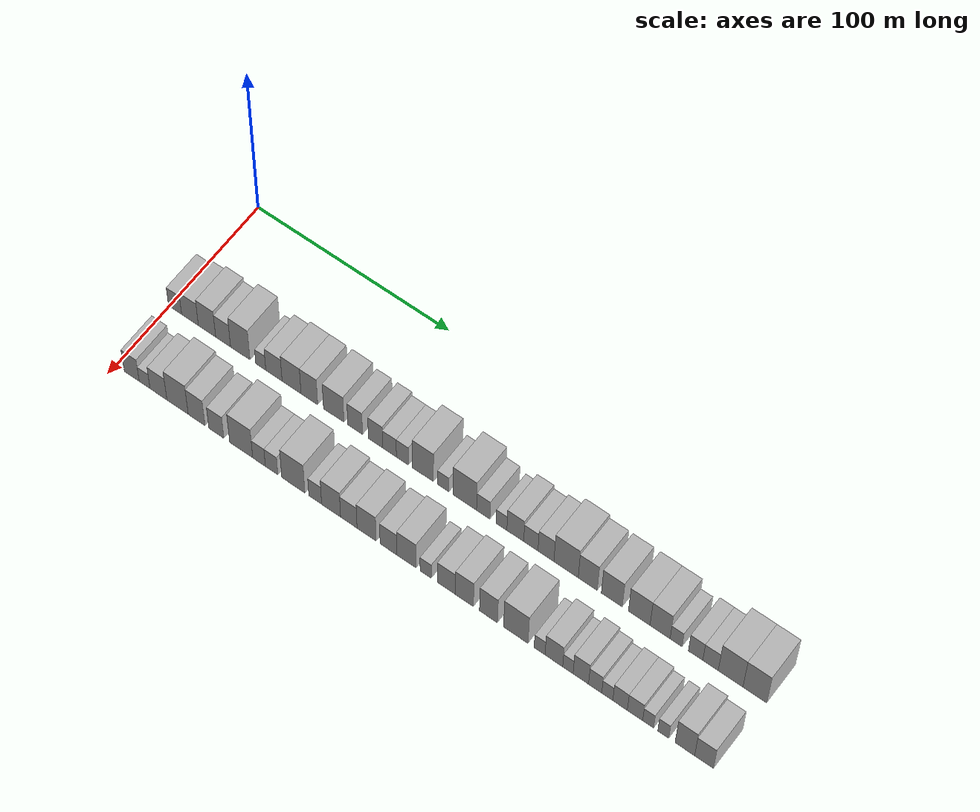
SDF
<sdf version="1.6">
 <world name="default">
  <model name="building_33">
   <static>1</static>
   <pose>50.0000 3.1521 0 0.000000 0.000000 0.000000</pose>
   <link name="link">
    <pose>0 0 7.50 0 0 0</pose>
    <collision name="collision"><geometry><box><size>20.0000 6.9400 15.0000</size></box></geometry></collision>
    <visual name="visual">
     <cast_shadows>0</cast_shadows>
     <geometry><box><size>20.0000 6.9400 15.0000</size></box></geometry>
     <material>
      <script>
       <uri>model://HANNAS_wall/materials/scripts</uri>
       <uri>model://HANNAS_wall/materials/textures</uri>
       <name>vrc/HANNAS_wall</name>
      </script>
     </material>
    </visual>
   </link>
  </model>
  <model name="building_34">
   <static>1</static>
   <pose>50.0000 11.0460 0 0.000000 0.000000 0.000000</pose>
   <link name="link">
    <pose>0 0 9.00 0 0 0</pose>
    <collision name="collision"><geometry><box><size>20.0000 8.8478 18.0000</size></box></geometry></collision>
    <visual name="visual">
     <cast_shadows>0</cast_shadows>
     <geometry><box><size>20.0000 8.8478 18.0000</size></box></geometry>
     <material>
      <script>
       <uri>model://HANNAS_wall/materials/scripts</uri>
       <uri>model://HANNAS_wall/materials/textures</uri>
       <name>vrc/HANNAS_wall</name>
      </script>
     </material>
    </visual>
   </link>
  </model>
  <model name="building_35">
   <static>1</static>
   <pose>50.0000 20.0284 0 0.000000 0.000000 0.000000</pose>
   <link name="link">
    <pose>0 0 10.50 0 0 0</pose>
    <collision name="collision"><geometry><box><size>20.0000 9.1170 21.0000</size></box></geometry></collision>
    <visual name="visual">
     <cast_shadows>0</cast_shadows>
     <geometry><box><size>20.0000 9.1170 21.0000</size></box></geometry>
     <material>
      <script>
       <uri>model://HANNAS_wall/materials/scripts</uri>
       <uri>model://HANNAS_wall/materials/textures</uri>
       <name>vrc/HANNAS_wall</name>
      </script>
     </material>
    </visual>
   </link>
  </model>
  <model name="building_36">
   <static>1</static>
   <pose>50.0000 28.4956 0 0.000000 0.000000 0.000000</pose>
   <link name="link">
    <pose>0 0 9.00 0 0 0</pose>
    <collision name="collision"><geometry><box><size>20.0000 7.8173 18.0000</size></box></geometry></collision>
    <visual name="visual">
     <cast_shadows>0</cast_shadows>
     <geometry><box><size>20.0000 7.8173 18.0000</size></box></geometry>
     <material>
      <script>
       <uri>model://HANNAS_wall/materials/scripts</uri>
       <uri>model://HANNAS_wall/materials/textures</uri>
       <name>vrc/HANNAS_wall</name>
      </script>
     </material>
    </visual>
   </link>
  </model>
  <model name="building_37">
   <static>1</static>
   <pose>50.0000 37.4809 0 0.000000 0.000000 0.000000</pose>
   <link name="link">
    <pose>0 0 12.00 0 0 0</pose>
    <collision name="collision"><geometry><box><size>20.0000 10.1533 24.0000</size></box></geometry></collision>
    <visual name="visual">
     <cast_shadows>0</cast_shadows>
     <geometry><box><size>20.0000 10.1533 24.0000</size></box></geometry>
     <material>
      <script>
       <uri>model://HANNAS_wall/materials/scripts</uri>
       <uri>model://HANNAS_wall/materials/textures</uri>
       <name>vrc/HANNAS_wall</name>
      </script>
     </material>
    </visual>
   </link>
  </model>
  <model name="building_38">
   <static>1</static>
   <pose>50.0000 48.1774 0 0.000000 0.000000 0.000000</pose>
   <link name="link">
    <pose>0 0 6.00 0 0 0</pose>
    <collision name="collision"><geometry><box><size>20.0000 5.2396 12.0000</size></box></geometry></collision>
    <visual name="visual">
     <cast_shadows>0</cast_shadows>
     <geometry><box><size>20.0000 5.2396 12.0000</size></box></geometry>
     <material>
      <script>
       <uri>model://HANNAS_wall/materials/scripts</uri>
       <uri>model://HANNAS_wall/materials/textures</uri>
       <name>vrc/HANNAS_wall</name>
      </script>
     </material>
    </visual>
   </link>
  </model>
  <model name="building_39">
   <static>1</static>
   <pose>50.0000 55.0235 0 0.000000 0.000000 0.000000</pose>
   <link name="link">
    <pose>0 0 9.00 0 0 0</pose>
    <collision name="collision"><geometry><box><size>20.0000 8.4526 18.0000</size></box></geometry></collision>
    <visual name="visual">
     <cast_shadows>0</cast_shadows>
     <geometry><box><size>20.0000 8.4526 18.0000</size></box></geometry>
     <material>
      <script>
       <uri>model://HANNAS_wall/materials/scripts</uri>
       <uri>model://HANNAS_wall/materials/textures</uri>
       <name>vrc/HANNAS_wall</name>
      </script>
     </material>
    </visual>
   </link>
  </model>
  <model name="building_40">
   <static>1</static>
   <pose>50.0000 64.1418 0 0.000000 0.000000 0.000000</pose>
   <link name="link">
    <pose>0 0 10.50 0 0 0</pose>
    <collision name="collision"><geometry><box><size>20.0000 9.7840 21.0000</size></box></geometry></collision>
    <visual name="visual">
     <cast_shadows>0</cast_shadows>
     <geometry><box><size>20.0000 9.7840 21.0000</size></box></geometry>
     <material>
      <script>
       <uri>model://HANNAS_wall/materials/scripts</uri>
       <uri>model://HANNAS_wall/materials/textures</uri>
       <name>vrc/HANNAS_wall</name>
      </script>
     </material>
    </visual>
   </link>
  </model>
  <model name="building_41">
   <static>1</static>
   <pose>50.0000 73.3404 0 0.000000 0.000000 0.000000</pose>
   <link name="link">
    <pose>0 0 10.50 0 0 0</pose>
    <collision name="collision"><geometry><box><size>20.0000 8.6131 21.0000</size></box></geometry></collision>
    <visual name="visual">
     <cast_shadows>0</cast_shadows>
     <geometry><box><size>20.0000 8.6131 21.0000</size></box></geometry>
     <material>
      <script>
       <uri>model://HANNAS_wall/materials/scripts</uri>
       <uri>model://HANNAS_wall/materials/textures</uri>
       <name>vrc/HANNAS_wall</name>
      </script>
     </material>
    </visual>
   </link>
  </model>
  <model name="building_42">
   <static>1</static>
   <pose>50.0000 85.8703 0 0.000000 0.000000 0.000000</pose>
   <link name="link">
    <pose>0 0 10.50 0 0 0</pose>
    <collision name="collision"><geometry><box><size>20.0000 10.4467 21.0000</size></box></geometry></collision>
    <visual name="visual">
     <cast_shadows>0</cast_shadows>
     <geometry><box><size>20.0000 10.4467 21.0000</size></box></geometry>
     <material>
      <script>
       <uri>model://HANNAS_wall/materials/scripts</uri>
       <uri>model://HANNAS_wall/materials/textures</uri>
       <name>vrc/HANNAS_wall</name>
      </script>
     </material>
    </visual>
   </link>
  </model>
  <model name="building_43">
   <static>1</static>
   <pose>50.0000 96.8396 0 0.000000 0.000000 0.000000</pose>
   <link name="link">
    <pose>0 0 9.00 0 0 0</pose>
    <collision name="collision"><geometry><box><size>20.0000 7.4919 18.0000</size></box></geometry></collision>
    <visual name="visual">
     <cast_shadows>0</cast_shadows>
     <geometry><box><size>20.0000 7.4919 18.0000</size></box></geometry>
     <material>
      <script>
       <uri>model://HANNAS_wall/materials/scripts</uri>
       <uri>model://HANNAS_wall/materials/textures</uri>
       <name>vrc/HANNAS_wall</name>
      </script>
     </material>
    </visual>
   </link>
  </model>
  <model name="building_44">
   <static>1</static>
   <pose>50.0000 107.2097 0 0.000000 0.000000 0.000000</pose>
   <link name="link">
    <pose>0 0 9.00 0 0 0</pose>
    <collision name="collision"><geometry><box><size>20.0000 7.2483 18.0000</size></box></geometry></collision>
    <visual name="visual">
     <cast_shadows>0</cast_shadows>
     <geometry><box><size>20.0000 7.2483 18.0000</size></box></geometry>
     <material>
      <script>
       <uri>model://HANNAS_wall/materials/scripts</uri>
       <uri>model://HANNAS_wall/materials/textures</uri>
       <name>vrc/HANNAS_wall</name>
      </script>
     </material>
    </visual>
   </link>
  </model>
  <model name="building_45">
   <static>1</static>
   <pose>50.0000 114.3079 0 0.000000 0.000000 0.000000</pose>
   <link name="link">
    <pose>0 0 7.50 0 0 0</pose>
    <collision name="collision"><geometry><box><size>20.0000 6.9482 15.0000</size></box></geometry></collision>
    <visual name="visual">
     <cast_shadows>0</cast_shadows>
     <geometry><box><size>20.0000 6.9482 15.0000</size></box></geometry>
     <material>
      <script>
       <uri>model://HANNAS_wall/materials/scripts</uri>
       <uri>model://HANNAS_wall/materials/textures</uri>
       <name>vrc/HANNAS_wall</name>
      </script>
     </material>
    </visual>
   </link>
  </model>
  <model name="building_46">
   <static>1</static>
   <pose>50.0000 120.8372 0 0.000000 0.000000 0.000000</pose>
   <link name="link">
    <pose>0 0 7.50 0 0 0</pose>
    <collision name="collision"><geometry><box><size>20.0000 6.1103 15.0000</size></box></geometry></collision>
    <visual name="visual">
     <cast_shadows>0</cast_shadows>
     <geometry><box><size>20.0000 6.1103 15.0000</size></box></geometry>
     <material>
      <script>
       <uri>model://HANNAS_wall/materials/scripts</uri>
       <uri>model://HANNAS_wall/materials/textures</uri>
       <name>vrc/HANNAS_wall</name>
      </script>
     </material>
    </visual>
   </link>
  </model>
  <model name="building_47">
   <static>1</static>
   <pose>50.0000 131.1710 0 0.000000 0.000000 0.000000</pose>
   <link name="link">
    <pose>0 0 12.00 0 0 0</pose>
    <collision name="collision"><geometry><box><size>20.0000 10.5573 24.0000</size></box></geometry></collision>
    <visual name="visual">
     <cast_shadows>0</cast_shadows>
     <geometry><box><size>20.0000 10.5573 24.0000</size></box></geometry>
     <material>
      <script>
       <uri>model://HANNAS_wall/materials/scripts</uri>
       <uri>model://HANNAS_wall/materials/textures</uri>
       <name>vrc/HANNAS_wall</name>
      </script>
     </material>
    </visual>
   </link>
  </model>
  <model name="building_48">
   <static>1</static>
   <pose>50.0000 141.3286 0 0.000000 0.000000 0.000000</pose>
   <link name="link">
    <pose>0 0 6.00 0 0 0</pose>
    <collision name="collision"><geometry><box><size>20.0000 5.7578 12.0000</size></box></geometry></collision>
    <visual name="visual">
     <cast_shadows>0</cast_shadows>
     <geometry><box><size>20.0000 5.7578 12.0000</size></box></geometry>
     <material>
      <script>
       <uri>model://HANNAS_wall/materials/scripts</uri>
       <uri>model://HANNAS_wall/materials/textures</uri>
       <name>vrc/HANNAS_wall</name>
      </script>
     </material>
    </visual>
   </link>
  </model>
  <model name="building_49">
   <static>1</static>
   <pose>50.0000 152.1058 0 0.000000 0.000000 0.000000</pose>
   <link name="link">
    <pose>0 0 12.00 0 0 0</pose>
    <collision name="collision"><geometry><box><size>20.0000 11.7966 24.0000</size></box></geometry></collision>
    <visual name="visual">
     <cast_shadows>0</cast_shadows>
     <geometry><box><size>20.0000 11.7966 24.0000</size></box></geometry>
     <material>
      <script>
       <uri>model://HANNAS_wall/materials/scripts</uri>
       <uri>model://HANNAS_wall/materials/textures</uri>
       <name>vrc/HANNAS_wall</name>
      </script>
     </material>
    </visual>
   </link>
  </model>
  <model name="building_50">
   <static>1</static>
   <pose>50.0000 161.3283 0 0.000000 0.000000 0.000000</pose>
   <link name="link">
    <pose>0 0 7.50 0 0 0</pose>
    <collision name="collision"><geometry><box><size>20.0000 6.6484 15.0000</size></box></geometry></collision>
    <visual name="visual">
     <cast_shadows>0</cast_shadows>
     <geometry><box><size>20.0000 6.6484 15.0000</size></box></geometry>
     <material>
      <script>
       <uri>model://HANNAS_wall/materials/scripts</uri>
       <uri>model://HANNAS_wall/materials/textures</uri>
       <name>vrc/HANNAS_wall</name>
      </script>
     </material>
    </visual>
   </link>
  </model>
  <model name="building_51">
   <static>1</static>
   <pose>50.0000 170.3522 0 0.000000 0.000000 0.000000</pose>
   <link name="link">
    <pose>0 0 6.00 0 0 0</pose>
    <collision name="collision"><geometry><box><size>20.0000 5.3995 12.0000</size></box></geometry></collision>
    <visual name="visual">
     <cast_shadows>0</cast_shadows>
     <geometry><box><size>20.0000 5.3995 12.0000</size></box></geometry>
     <material>
      <script>
       <uri>model://HANNAS_wall/materials/scripts</uri>
       <uri>model://HANNAS_wall/materials/textures</uri>
       <name>vrc/HANNAS_wall</name>
      </script>
     </material>
    </visual>
   </link>
  </model>
  <model name="building_52">
   <static>1</static>
   <pose>50.0000 177.2040 0 0.000000 0.000000 0.000000</pose>
   <link name="link">
    <pose>0 0 9.00 0 0 0</pose>
    <collision name="collision"><geometry><box><size>20.0000 8.3040 18.0000</size></box></geometry></collision>
    <visual name="visual">
     <cast_shadows>0</cast_shadows>
     <geometry><box><size>20.0000 8.3040 18.0000</size></box></geometry>
     <material>
      <script>
       <uri>model://HANNAS_wall/materials/scripts</uri>
       <uri>model://HANNAS_wall/materials/textures</uri>
       <name>vrc/HANNAS_wall</name>
      </script>
     </material>
    </visual>
   </link>
  </model>
  <model name="building_53">
   <static>1</static>
   <pose>50.0000 184.8605 0 0.000000 0.000000 0.000000</pose>
   <link name="link">
    <pose>0 0 7.50 0 0 0</pose>
    <collision name="collision"><geometry><box><size>20.0000 7.0092 15.0000</size></box></geometry></collision>
    <visual name="visual">
     <cast_shadows>0</cast_shadows>
     <geometry><box><size>20.0000 7.0092 15.0000</size></box></geometry>
     <material>
      <script>
       <uri>model://HANNAS_wall/materials/scripts</uri>
       <uri>model://HANNAS_wall/materials/textures</uri>
       <name>vrc/HANNAS_wall</name>
      </script>
     </material>
    </visual>
   </link>
  </model>
  <model name="building_54">
   <static>1</static>
   <pose>50.0000 192.2796 0 0.000000 0.000000 0.000000</pose>
   <link name="link">
    <pose>0 0 9.00 0 0 0</pose>
    <collision name="collision"><geometry><box><size>20.0000 7.8289 18.0000</size></box></geometry></collision>
    <visual name="visual">
     <cast_shadows>0</cast_shadows>
     <geometry><box><size>20.0000 7.8289 18.0000</size></box></geometry>
     <material>
      <script>
       <uri>model://HANNAS_wall/materials/scripts</uri>
       <uri>model://HANNAS_wall/materials/textures</uri>
       <name>vrc/HANNAS_wall</name>
      </script>
     </material>
    </visual>
   </link>
  </model>
  <model name="building_55">
   <static>1</static>
   <pose>50.0000 202.1434 0 0.000000 0.000000 0.000000</pose>
   <link name="link">
    <pose>0 0 12.00 0 0 0</pose>
    <collision name="collision"><geometry><box><size>20.0000 11.8985 24.0000</size></box></geometry></collision>
    <visual name="visual">
     <cast_shadows>0</cast_shadows>
     <geometry><box><size>20.0000 11.8985 24.0000</size></box></geometry>
     <material>
      <script>
       <uri>model://HANNAS_wall/materials/scripts</uri>
       <uri>model://HANNAS_wall/materials/textures</uri>
       <name>vrc/HANNAS_wall</name>
      </script>
     </material>
    </visual>
   </link>
  </model>
  <model name="building_56">
   <static>1</static>
   <pose>50.0000 212.7062 0 0.000000 0.000000 0.000000</pose>
   <link name="link">
    <pose>0 0 10.50 0 0 0</pose>
    <collision name="collision"><geometry><box><size>20.0000 9.2271 21.0000</size></box></geometry></collision>
    <visual name="visual">
     <cast_shadows>0</cast_shadows>
     <geometry><box><size>20.0000 9.2271 21.0000</size></box></geometry>
     <material>
      <script>
       <uri>model://HANNAS_wall/materials/scripts</uri>
       <uri>model://HANNAS_wall/materials/textures</uri>
       <name>vrc/HANNAS_wall</name>
      </script>
     </material>
    </visual>
   </link>
  </model>
  <model name="building_57">
   <static>1</static>
   <pose>50.0000 224.3722 0 0.000000 0.000000 0.000000</pose>
   <link name="link">
    <pose>0 0 10.50 0 0 0</pose>
    <collision name="collision"><geometry><box><size>20.0000 10.1051 21.0000</size></box></geometry></collision>
    <visual name="visual">
     <cast_shadows>0</cast_shadows>
     <geometry><box><size>20.0000 10.1051 21.0000</size></box></geometry>
     <material>
      <script>
       <uri>model://HANNAS_wall/materials/scripts</uri>
       <uri>model://HANNAS_wall/materials/textures</uri>
       <name>vrc/HANNAS_wall</name>
      </script>
     </material>
    </visual>
   </link>
  </model>
  <model name="building_58">
   <static>1</static>
   <pose>50.0000 237.6212 0 0.000000 0.000000 0.000000</pose>
   <link name="link">
    <pose>0 0 10.50 0 0 0</pose>
    <collision name="collision"><geometry><box><size>20.0000 10.3929 21.0000</size></box></geometry></collision>
    <visual name="visual">
     <cast_shadows>0</cast_shadows>
     <geometry><box><size>20.0000 10.3929 21.0000</size></box></geometry>
     <material>
      <script>
       <uri>model://HANNAS_wall/materials/scripts</uri>
       <uri>model://HANNAS_wall/materials/textures</uri>
       <name>vrc/HANNAS_wall</name>
      </script>
     </material>
    </visual>
   </link>
  </model>
  <model name="building_59">
   <static>1</static>
   <pose>50.0000 247.6309 0 0.000000 0.000000 0.000000</pose>
   <link name="link">
    <pose>0 0 10.50 0 0 0</pose>
    <collision name="collision"><geometry><box><size>20.0000 9.6265 21.0000</size></box></geometry></collision>
    <visual name="visual">
     <cast_shadows>0</cast_shadows>
     <geometry><box><size>20.0000 9.6265 21.0000</size></box></geometry>
     <material>
      <script>
       <uri>model://HANNAS_wall/materials/scripts</uri>
       <uri>model://HANNAS_wall/materials/textures</uri>
       <name>vrc/HANNAS_wall</name>
      </script>
     </material>
    </visual>
   </link>
  </model>
  <model name="building_60">
   <static>1</static>
   <pose>50.0000 255.3122 0 0.000000 0.000000 0.000000</pose>
   <link name="link">
    <pose>0 0 6.00 0 0 0</pose>
    <collision name="collision"><geometry><box><size>20.0000 5.7360 12.0000</size></box></geometry></collision>
    <visual name="visual">
     <cast_shadows>0</cast_shadows>
     <geometry><box><size>20.0000 5.7360 12.0000</size></box></geometry>
     <material>
      <script>
       <uri>model://HANNAS_wall/materials/scripts</uri>
       <uri>model://HANNAS_wall/materials/textures</uri>
       <name>vrc/HANNAS_wall</name>
      </script>
     </material>
    </visual>
   </link>
  </model>
  <model name="building_61">
   <static>1</static>
   <pose>50.0000 264.6094 0 0.000000 0.000000 0.000000</pose>
   <link name="link">
    <pose>0 0 7.50 0 0 0</pose>
    <collision name="collision"><geometry><box><size>20.0000 6.8584 15.0000</size></box></geometry></collision>
    <visual name="visual">
     <cast_shadows>0</cast_shadows>
     <geometry><box><size>20.0000 6.8584 15.0000</size></box></geometry>
     <material>
      <script>
       <uri>model://HANNAS_wall/materials/scripts</uri>
       <uri>model://HANNAS_wall/materials/textures</uri>
       <name>vrc/HANNAS_wall</name>
      </script>
     </material>
    </visual>
   </link>
  </model>
  <model name="building_62">
   <static>1</static>
   <pose>50.0000 271.6974 0 0.000000 0.000000 0.000000</pose>
   <link name="link">
    <pose>0 0 7.50 0 0 0</pose>
    <collision name="collision"><geometry><box><size>20.0000 7.3177 15.0000</size></box></geometry></collision>
    <visual name="visual">
     <cast_shadows>0</cast_shadows>
     <geometry><box><size>20.0000 7.3177 15.0000</size></box></geometry>
     <material>
      <script>
       <uri>model://HANNAS_wall/materials/scripts</uri>
       <uri>model://HANNAS_wall/materials/textures</uri>
       <name>vrc/HANNAS_wall</name>
      </script>
     </material>
    </visual>
   </link>
  </model>
  <model name="building_63">
   <static>1</static>
   <pose>50.0000 281.1941 0 0.000000 0.000000 0.000000</pose>
   <link name="link">
    <pose>0 0 12.00 0 0 0</pose>
    <collision name="collision"><geometry><box><size>20.0000 11.6757 24.0000</size></box></geometry></collision>
    <visual name="visual">
     <cast_shadows>0</cast_shadows>
     <geometry><box><size>20.0000 11.6757 24.0000</size></box></geometry>
     <material>
      <script>
       <uri>model://HANNAS_wall/materials/scripts</uri>
       <uri>model://HANNAS_wall/materials/textures</uri>
       <name>vrc/HANNAS_wall</name>
      </script>
     </material>
    </visual>
   </link>
  </model>
  <model name="building_64">
   <static>1</static>
   <pose>50.0000 292.6309 0 0.000000 0.000000 0.000000</pose>
   <link name="link">
    <pose>0 0 12.00 0 0 0</pose>
    <collision name="collision"><geometry><box><size>20.0000 11.1978 24.0000</size></box></geometry></collision>
    <visual name="visual">
     <cast_shadows>0</cast_shadows>
     <geometry><box><size>20.0000 11.1978 24.0000</size></box></geometry>
     <material>
      <script>
       <uri>model://HANNAS_wall/materials/scripts</uri>
       <uri>model://HANNAS_wall/materials/textures</uri>
       <name>vrc/HANNAS_wall</name>
      </script>
     </material>
    </visual>
   </link>
  </model>
  <model name="building_98">
   <static>1</static>
   <pose>85.0000 8.4655 0 0.000000 0.000000 0.000000</pose>
   <link name="link">
    <pose>0 0 9.00 0 0 0</pose>
    <collision name="collision"><geometry><box><size>20.0000 7.8711 18.0000</size></box></geometry></collision>
    <visual name="visual">
     <cast_shadows>0</cast_shadows>
     <geometry><box><size>20.0000 7.8711 18.0000</size></box></geometry>
     <material>
      <script>
       <uri>model://HANNAS_wall/materials/scripts</uri>
       <uri>model://HANNAS_wall/materials/textures</uri>
       <name>vrc/HANNAS_wall</name>
      </script>
     </material>
    </visual>
   </link>
  </model>
  <model name="building_99">
   <static>1</static>
   <pose>85.0000 15.2433 0 0.000000 0.000000 0.000000</pose>
   <link name="link">
    <pose>0 0 6.00 0 0 0</pose>
    <collision name="collision"><geometry><box><size>20.0000 5.6845 12.0000</size></box></geometry></collision>
    <visual name="visual">
     <cast_shadows>0</cast_shadows>
     <geometry><box><size>20.0000 5.6845 12.0000</size></box></geometry>
     <material>
      <script>
       <uri>model://HANNAS_wall/materials/scripts</uri>
       <uri>model://HANNAS_wall/materials/textures</uri>
       <name>vrc/HANNAS_wall</name>
      </script>
     </material>
    </visual>
   </link>
  </model>
  <model name="building_100">
   <static>1</static>
   <pose>85.0000 22.5044 0 0.000000 0.000000 0.000000</pose>
   <link name="link">
    <pose>0 0 9.00 0 0 0</pose>
    <collision name="collision"><geometry><box><size>20.0000 8.8376 18.0000</size></box></geometry></collision>
    <visual name="visual">
     <cast_shadows>0</cast_shadows>
     <geometry><box><size>20.0000 8.8376 18.0000</size></box></geometry>
     <material>
      <script>
       <uri>model://HANNAS_wall/materials/scripts</uri>
       <uri>model://HANNAS_wall/materials/textures</uri>
       <name>vrc/HANNAS_wall</name>
      </script>
     </material>
    </visual>
   </link>
  </model>
  <model name="building_101">
   <static>1</static>
   <pose>85.0000 32.4868 0 0.000000 0.000000 0.000000</pose>
   <link name="link">
    <pose>0 0 12.00 0 0 0</pose>
    <collision name="collision"><geometry><box><size>20.0000 11.1273 24.0000</size></box></geometry></collision>
    <visual name="visual">
     <cast_shadows>0</cast_shadows>
     <geometry><box><size>20.0000 11.1273 24.0000</size></box></geometry>
     <material>
      <script>
       <uri>model://HANNAS_wall/materials/scripts</uri>
       <uri>model://HANNAS_wall/materials/textures</uri>
       <name>vrc/HANNAS_wall</name>
      </script>
     </material>
    </visual>
   </link>
  </model>
  <model name="building_102">
   <static>1</static>
   <pose>85.0000 42.4105 0 0.000000 0.000000 0.000000</pose>
   <link name="link">
    <pose>0 0 10.50 0 0 0</pose>
    <collision name="collision"><geometry><box><size>20.0000 8.7200 21.0000</size></box></geometry></collision>
    <visual name="visual">
     <cast_shadows>0</cast_shadows>
     <geometry><box><size>20.0000 8.7200 21.0000</size></box></geometry>
     <material>
      <script>
       <uri>model://HANNAS_wall/materials/scripts</uri>
       <uri>model://HANNAS_wall/materials/textures</uri>
       <name>vrc/HANNAS_wall</name>
      </script>
     </material>
    </visual>
   </link>
  </model>
  <model name="building_103">
   <static>1</static>
   <pose>85.0000 52.6593 0 0.000000 0.000000 0.000000</pose>
   <link name="link">
    <pose>0 0 9.00 0 0 0</pose>
    <collision name="collision"><geometry><box><size>20.0000 7.7776 18.0000</size></box></geometry></collision>
    <visual name="visual">
     <cast_shadows>0</cast_shadows>
     <geometry><box><size>20.0000 7.7776 18.0000</size></box></geometry>
     <material>
      <script>
       <uri>model://HANNAS_wall/materials/scripts</uri>
       <uri>model://HANNAS_wall/materials/textures</uri>
       <name>vrc/HANNAS_wall</name>
      </script>
     </material>
    </visual>
   </link>
  </model>
  <model name="building_104">
   <static>1</static>
   <pose>85.0000 65.4905 0 0.000000 0.000000 0.000000</pose>
   <link name="link">
    <pose>0 0 12.00 0 0 0</pose>
    <collision name="collision"><geometry><box><size>20.0000 11.8847 24.0000</size></box></geometry></collision>
    <visual name="visual">
     <cast_shadows>0</cast_shadows>
     <geometry><box><size>20.0000 11.8847 24.0000</size></box></geometry>
     <material>
      <script>
       <uri>model://HANNAS_wall/materials/scripts</uri>
       <uri>model://HANNAS_wall/materials/textures</uri>
       <name>vrc/HANNAS_wall</name>
      </script>
     </material>
    </visual>
   </link>
  </model>
  <model name="building_105">
   <static>1</static>
   <pose>85.0000 74.6698 0 0.000000 0.000000 0.000000</pose>
   <link name="link">
    <pose>0 0 7.50 0 0 0</pose>
    <collision name="collision"><geometry><box><size>20.0000 6.4739 15.0000</size></box></geometry></collision>
    <visual name="visual">
     <cast_shadows>0</cast_shadows>
     <geometry><box><size>20.0000 6.4739 15.0000</size></box></geometry>
     <material>
      <script>
       <uri>model://HANNAS_wall/materials/scripts</uri>
       <uri>model://HANNAS_wall/materials/textures</uri>
       <name>vrc/HANNAS_wall</name>
      </script>
     </material>
    </visual>
   </link>
  </model>
  <model name="building_106">
   <static>1</static>
   <pose>85.0000 81.0987 0 0.000000 0.000000 0.000000</pose>
   <link name="link">
    <pose>0 0 7.50 0 0 0</pose>
    <collision name="collision"><geometry><box><size>20.0000 6.3840 15.0000</size></box></geometry></collision>
    <visual name="visual">
     <cast_shadows>0</cast_shadows>
     <geometry><box><size>20.0000 6.3840 15.0000</size></box></geometry>
     <material>
      <script>
       <uri>model://HANNAS_wall/materials/scripts</uri>
       <uri>model://HANNAS_wall/materials/textures</uri>
       <name>vrc/HANNAS_wall</name>
      </script>
     </material>
    </visual>
   </link>
  </model>
  <model name="building_107">
   <static>1</static>
   <pose>85.0000 92.1705 0 0.000000 0.000000 0.000000</pose>
   <link name="link">
    <pose>0 0 12.00 0 0 0</pose>
    <collision name="collision"><geometry><box><size>20.0000 11.7596 24.0000</size></box></geometry></collision>
    <visual name="visual">
     <cast_shadows>0</cast_shadows>
     <geometry><box><size>20.0000 11.7596 24.0000</size></box></geometry>
     <material>
      <script>
       <uri>model://HANNAS_wall/materials/scripts</uri>
       <uri>model://HANNAS_wall/materials/textures</uri>
       <name>vrc/HANNAS_wall</name>
      </script>
     </material>
    </visual>
   </link>
  </model>
  <model name="building_108">
   <static>1</static>
   <pose>85.0000 103.2896 0 0.000000 0.000000 0.000000</pose>
   <link name="link">
    <pose>0 0 7.50 0 0 0</pose>
    <collision name="collision"><geometry><box><size>20.0000 6.4787 15.0000</size></box></geometry></collision>
    <visual name="visual">
     <cast_shadows>0</cast_shadows>
     <geometry><box><size>20.0000 6.4787 15.0000</size></box></geometry>
     <material>
      <script>
       <uri>model://HANNAS_wall/materials/scripts</uri>
       <uri>model://HANNAS_wall/materials/textures</uri>
       <name>vrc/HANNAS_wall</name>
      </script>
     </material>
    </visual>
   </link>
  </model>
  <model name="building_109">
   <static>1</static>
   <pose>85.0000 111.3227 0 0.000000 0.000000 0.000000</pose>
   <link name="link">
    <pose>0 0 10.50 0 0 0</pose>
    <collision name="collision"><geometry><box><size>20.0000 9.5874 21.0000</size></box></geometry></collision>
    <visual name="visual">
     <cast_shadows>0</cast_shadows>
     <geometry><box><size>20.0000 9.5874 21.0000</size></box></geometry>
     <material>
      <script>
       <uri>model://HANNAS_wall/materials/scripts</uri>
       <uri>model://HANNAS_wall/materials/textures</uri>
       <name>vrc/HANNAS_wall</name>
      </script>
     </material>
    </visual>
   </link>
  </model>
  <model name="building_110">
   <static>1</static>
   <pose>85.0000 120.2612 0 0.000000 0.000000 0.000000</pose>
   <link name="link">
    <pose>0 0 9.00 0 0 0</pose>
    <collision name="collision"><geometry><box><size>20.0000 8.2897 18.0000</size></box></geometry></collision>
    <visual name="visual">
     <cast_shadows>0</cast_shadows>
     <geometry><box><size>20.0000 8.2897 18.0000</size></box></geometry>
     <material>
      <script>
       <uri>model://HANNAS_wall/materials/scripts</uri>
       <uri>model://HANNAS_wall/materials/textures</uri>
       <name>vrc/HANNAS_wall</name>
      </script>
     </material>
    </visual>
   </link>
  </model>
  <model name="building_111">
   <static>1</static>
   <pose>85.0000 129.1804 0 0.000000 0.000000 0.000000</pose>
   <link name="link">
    <pose>0 0 10.50 0 0 0</pose>
    <collision name="collision"><geometry><box><size>20.0000 9.5487 21.0000</size></box></geometry></collision>
    <visual name="visual">
     <cast_shadows>0</cast_shadows>
     <geometry><box><size>20.0000 9.5487 21.0000</size></box></geometry>
     <material>
      <script>
       <uri>model://HANNAS_wall/materials/scripts</uri>
       <uri>model://HANNAS_wall/materials/textures</uri>
       <name>vrc/HANNAS_wall</name>
      </script>
     </material>
    </visual>
   </link>
  </model>
  <model name="building_112">
   <static>1</static>
   <pose>85.0000 140.1492 0 0.000000 0.000000 0.000000</pose>
   <link name="link">
    <pose>0 0 9.00 0 0 0</pose>
    <collision name="collision"><geometry><box><size>20.0000 8.3890 18.0000</size></box></geometry></collision>
    <visual name="visual">
     <cast_shadows>0</cast_shadows>
     <geometry><box><size>20.0000 8.3890 18.0000</size></box></geometry>
     <material>
      <script>
       <uri>model://HANNAS_wall/materials/scripts</uri>
       <uri>model://HANNAS_wall/materials/textures</uri>
       <name>vrc/HANNAS_wall</name>
      </script>
     </material>
    </visual>
   </link>
  </model>
  <model name="building_113">
   <static>1</static>
   <pose>85.0000 149.1115 0 0.000000 0.000000 0.000000</pose>
   <link name="link">
    <pose>0 0 10.50 0 0 0</pose>
    <collision name="collision"><geometry><box><size>20.0000 9.5355 21.0000</size></box></geometry></collision>
    <visual name="visual">
     <cast_shadows>0</cast_shadows>
     <geometry><box><size>20.0000 9.5355 21.0000</size></box></geometry>
     <material>
      <script>
       <uri>model://HANNAS_wall/materials/scripts</uri>
       <uri>model://HANNAS_wall/materials/textures</uri>
       <name>vrc/HANNAS_wall</name>
      </script>
     </material>
    </visual>
   </link>
  </model>
  <model name="building_114">
   <static>1</static>
   <pose>85.0000 158.6471 0 0.000000 0.000000 0.000000</pose>
   <link name="link">
    <pose>0 0 6.00 0 0 0</pose>
    <collision name="collision"><geometry><box><size>20.0000 5.5358 12.0000</size></box></geometry></collision>
    <visual name="visual">
     <cast_shadows>0</cast_shadows>
     <geometry><box><size>20.0000 5.5358 12.0000</size></box></geometry>
     <material>
      <script>
       <uri>model://HANNAS_wall/materials/scripts</uri>
       <uri>model://HANNAS_wall/materials/textures</uri>
       <name>vrc/HANNAS_wall</name>
      </script>
     </material>
    </visual>
   </link>
  </model>
  <model name="building_115">
   <static>1</static>
   <pose>85.0000 168.8559 0 0.000000 0.000000 0.000000</pose>
   <link name="link">
    <pose>0 0 9.00 0 0 0</pose>
    <collision name="collision"><geometry><box><size>20.0000 8.8818 18.0000</size></box></geometry></collision>
    <visual name="visual">
     <cast_shadows>0</cast_shadows>
     <geometry><box><size>20.0000 8.8818 18.0000</size></box></geometry>
     <material>
      <script>
       <uri>model://HANNAS_wall/materials/scripts</uri>
       <uri>model://HANNAS_wall/materials/textures</uri>
       <name>vrc/HANNAS_wall</name>
      </script>
     </material>
    </visual>
   </link>
  </model>
  <model name="building_116">
   <static>1</static>
   <pose>85.0000 177.7217 0 0.000000 0.000000 0.000000</pose>
   <link name="link">
    <pose>0 0 10.50 0 0 0</pose>
    <collision name="collision"><geometry><box><size>20.0000 8.8499 21.0000</size></box></geometry></collision>
    <visual name="visual">
     <cast_shadows>0</cast_shadows>
     <geometry><box><size>20.0000 8.8499 21.0000</size></box></geometry>
     <material>
      <script>
       <uri>model://HANNAS_wall/materials/scripts</uri>
       <uri>model://HANNAS_wall/materials/textures</uri>
       <name>vrc/HANNAS_wall</name>
      </script>
     </material>
    </visual>
   </link>
  </model>
  <model name="building_117">
   <static>1</static>
   <pose>85.0000 189.5179 0 0.000000 0.000000 0.000000</pose>
   <link name="link">
    <pose>0 0 10.50 0 0 0</pose>
    <collision name="collision"><geometry><box><size>20.0000 8.7424 21.0000</size></box></geometry></collision>
    <visual name="visual">
     <cast_shadows>0</cast_shadows>
     <geometry><box><size>20.0000 8.7424 21.0000</size></box></geometry>
     <material>
      <script>
       <uri>model://HANNAS_wall/materials/scripts</uri>
       <uri>model://HANNAS_wall/materials/textures</uri>
       <name>vrc/HANNAS_wall</name>
      </script>
     </material>
    </visual>
   </link>
  </model>
  <model name="building_118">
   <static>1</static>
   <pose>85.0000 202.8280 0 0.000000 0.000000 0.000000</pose>
   <link name="link">
    <pose>0 0 12.00 0 0 0</pose>
    <collision name="collision"><geometry><box><size>20.0000 11.8777 24.0000</size></box></geometry></collision>
    <visual name="visual">
     <cast_shadows>0</cast_shadows>
     <geometry><box><size>20.0000 11.8777 24.0000</size></box></geometry>
     <material>
      <script>
       <uri>model://HANNAS_wall/materials/scripts</uri>
       <uri>model://HANNAS_wall/materials/textures</uri>
       <name>vrc/HANNAS_wall</name>
      </script>
     </material>
    </visual>
   </link>
  </model>
  <model name="building_119">
   <static>1</static>
   <pose>85.0000 214.3933 0 0.000000 0.000000 0.000000</pose>
   <link name="link">
    <pose>0 0 6.00 0 0 0</pose>
    <collision name="collision"><geometry><box><size>20.0000 5.2530 12.0000</size></box></geometry></collision>
    <visual name="visual">
     <cast_shadows>0</cast_shadows>
     <geometry><box><size>20.0000 5.2530 12.0000</size></box></geometry>
     <material>
      <script>
       <uri>model://HANNAS_wall/materials/scripts</uri>
       <uri>model://HANNAS_wall/materials/textures</uri>
       <name>vrc/HANNAS_wall</name>
      </script>
     </material>
    </visual>
   </link>
  </model>
  <model name="building_120">
   <static>1</static>
   <pose>85.0000 221.2844 0 0.000000 0.000000 0.000000</pose>
   <link name="link">
    <pose>0 0 9.00 0 0 0</pose>
    <collision name="collision"><geometry><box><size>20.0000 8.5292 18.0000</size></box></geometry></collision>
    <visual name="visual">
     <cast_shadows>0</cast_shadows>
     <geometry><box><size>20.0000 8.5292 18.0000</size></box></geometry>
     <material>
      <script>
       <uri>model://HANNAS_wall/materials/scripts</uri>
       <uri>model://HANNAS_wall/materials/textures</uri>
       <name>vrc/HANNAS_wall</name>
      </script>
     </material>
    </visual>
   </link>
  </model>
  <model name="building_121">
   <static>1</static>
   <pose>85.0000 228.0417 0 0.000000 0.000000 0.000000</pose>
   <link name="link">
    <pose>0 0 6.00 0 0 0</pose>
    <collision name="collision"><geometry><box><size>20.0000 4.9853 12.0000</size></box></geometry></collision>
    <visual name="visual">
     <cast_shadows>0</cast_shadows>
     <geometry><box><size>20.0000 4.9853 12.0000</size></box></geometry>
     <material>
      <script>
       <uri>model://HANNAS_wall/materials/scripts</uri>
       <uri>model://HANNAS_wall/materials/textures</uri>
       <name>vrc/HANNAS_wall</name>
      </script>
     </material>
    </visual>
   </link>
  </model>
  <model name="building_122">
   <static>1</static>
   <pose>85.0000 234.2510 0 0.000000 0.000000 0.000000</pose>
   <link name="link">
    <pose>0 0 9.00 0 0 0</pose>
    <collision name="collision"><geometry><box><size>20.0000 7.4332 18.0000</size></box></geometry></collision>
    <visual name="visual">
     <cast_shadows>0</cast_shadows>
     <geometry><box><size>20.0000 7.4332 18.0000</size></box></geometry>
     <material>
      <script>
       <uri>model://HANNAS_wall/materials/scripts</uri>
       <uri>model://HANNAS_wall/materials/textures</uri>
       <name>vrc/HANNAS_wall</name>
      </script>
     </material>
    </visual>
   </link>
  </model>
  <model name="building_123">
   <static>1</static>
   <pose>85.0000 241.1141 0 0.000000 0.000000 0.000000</pose>
   <link name="link">
    <pose>0 0 7.50 0 0 0</pose>
    <collision name="collision"><geometry><box><size>20.0000 6.2930 15.0000</size></box></geometry></collision>
    <visual name="visual">
     <cast_shadows>0</cast_shadows>
     <geometry><box><size>20.0000 6.2930 15.0000</size></box></geometry>
     <material>
      <script>
       <uri>model://HANNAS_wall/materials/scripts</uri>
       <uri>model://HANNAS_wall/materials/textures</uri>
       <name>vrc/HANNAS_wall</name>
      </script>
     </material>
    </visual>
   </link>
  </model>
  <model name="building_124">
   <static>1</static>
   <pose>85.0000 246.9015 0 0.000000 0.000000 0.000000</pose>
   <link name="link">
    <pose>0 0 6.00 0 0 0</pose>
    <collision name="collision"><geometry><box><size>20.0000 5.2816 12.0000</size></box></geometry></collision>
    <visual name="visual">
     <cast_shadows>0</cast_shadows>
     <geometry><box><size>20.0000 5.2816 12.0000</size></box></geometry>
     <material>
      <script>
       <uri>model://HANNAS_wall/materials/scripts</uri>
       <uri>model://HANNAS_wall/materials/textures</uri>
       <name>vrc/HANNAS_wall</name>
      </script>
     </material>
    </visual>
   </link>
  </model>
  <model name="building_125">
   <static>1</static>
   <pose>85.0000 252.9954 0 0.000000 0.000000 0.000000</pose>
   <link name="link">
    <pose>0 0 7.50 0 0 0</pose>
    <collision name="collision"><geometry><box><size>20.0000 6.9063 15.0000</size></box></geometry></collision>
    <visual name="visual">
     <cast_shadows>0</cast_shadows>
     <geometry><box><size>20.0000 6.9063 15.0000</size></box></geometry>
     <material>
      <script>
       <uri>model://HANNAS_wall/materials/scripts</uri>
       <uri>model://HANNAS_wall/materials/textures</uri>
       <name>vrc/HANNAS_wall</name>
      </script>
     </material>
    </visual>
   </link>
  </model>
  <model name="building_126">
   <static>1</static>
   <pose>85.0000 260.0909 0 0.000000 0.000000 0.000000</pose>
   <link name="link">
    <pose>0 0 7.50 0 0 0</pose>
    <collision name="collision"><geometry><box><size>20.0000 7.2846 15.0000</size></box></geometry></collision>
    <visual name="visual">
     <cast_shadows>0</cast_shadows>
     <geometry><box><size>20.0000 7.2846 15.0000</size></box></geometry>
     <material>
      <script>
       <uri>model://HANNAS_wall/materials/scripts</uri>
       <uri>model://HANNAS_wall/materials/textures</uri>
       <name>vrc/HANNAS_wall</name>
      </script>
     </material>
    </visual>
   </link>
  </model>
  <model name="building_127">
   <static>1</static>
   <pose>85.0000 266.3200 0 0.000000 0.000000 0.000000</pose>
   <link name="link">
    <pose>0 0 6.00 0 0 0</pose>
    <collision name="collision"><geometry><box><size>20.0000 5.1736 12.0000</size></box></geometry></collision>
    <visual name="visual">
     <cast_shadows>0</cast_shadows>
     <geometry><box><size>20.0000 5.1736 12.0000</size></box></geometry>
     <material>
      <script>
       <uri>model://HANNAS_wall/materials/scripts</uri>
       <uri>model://HANNAS_wall/materials/textures</uri>
       <name>vrc/HANNAS_wall</name>
      </script>
     </material>
    </visual>
   </link>
  </model>
  <model name="building_128">
   <static>1</static>
   <pose>85.0000 273.4941 0 0.000000 0.000000 0.000000</pose>
   <link name="link">
    <pose>0 0 6.00 0 0 0</pose>
    <collision name="collision"><geometry><box><size>20.0000 5.1746 12.0000</size></box></geometry></collision>
    <visual name="visual">
     <cast_shadows>0</cast_shadows>
     <geometry><box><size>20.0000 5.1746 12.0000</size></box></geometry>
     <material>
      <script>
       <uri>model://HANNAS_wall/materials/scripts</uri>
       <uri>model://HANNAS_wall/materials/textures</uri>
       <name>vrc/HANNAS_wall</name>
      </script>
     </material>
    </visual>
   </link>
  </model>
  <model name="building_129">
   <static>1</static>
   <pose>85.0000 283.6630 0 0.000000 0.000000 0.000000</pose>
   <link name="link">
    <pose>0 0 10.50 0 0 0</pose>
    <collision name="collision"><geometry><box><size>20.0000 9.1632 21.0000</size></box></geometry></collision>
    <visual name="visual">
     <cast_shadows>0</cast_shadows>
     <geometry><box><size>20.0000 9.1632 21.0000</size></box></geometry>
     <material>
      <script>
       <uri>model://HANNAS_wall/materials/scripts</uri>
       <uri>model://HANNAS_wall/materials/textures</uri>
       <name>vrc/HANNAS_wall</name>
      </script>
     </material>
    </visual>
   </link>
  </model>
  <model name="building_130">
   <static>1</static>
   <pose>85.0000 292.6523 0 0.000000 0.000000 0.000000</pose>
   <link name="link">
    <pose>0 0 9.00 0 0 0</pose>
    <collision name="collision"><geometry><box><size>20.0000 8.8156 18.0000</size></box></geometry></collision>
    <visual name="visual">
     <cast_shadows>0</cast_shadows>
     <geometry><box><size>20.0000 8.8156 18.0000</size></box></geometry>
     <material>
      <script>
       <uri>model://HANNAS_wall/materials/scripts</uri>
       <uri>model://HANNAS_wall/materials/textures</uri>
       <name>vrc/HANNAS_wall</name>
      </script>
     </material>
    </visual>
   </link>
  </model>
 </world>
</sdf>
